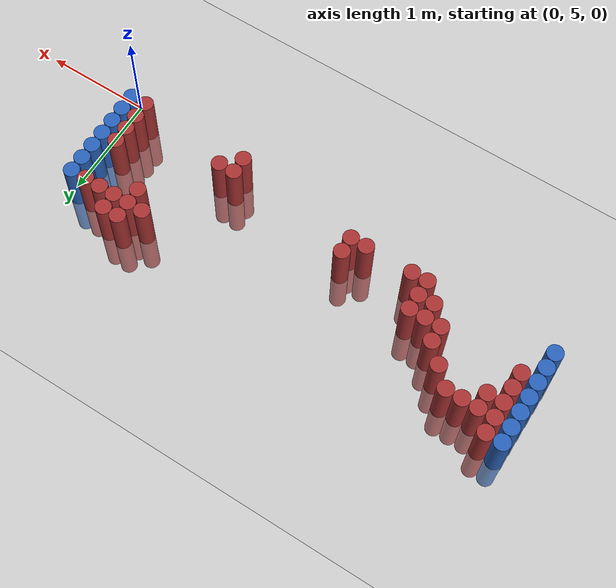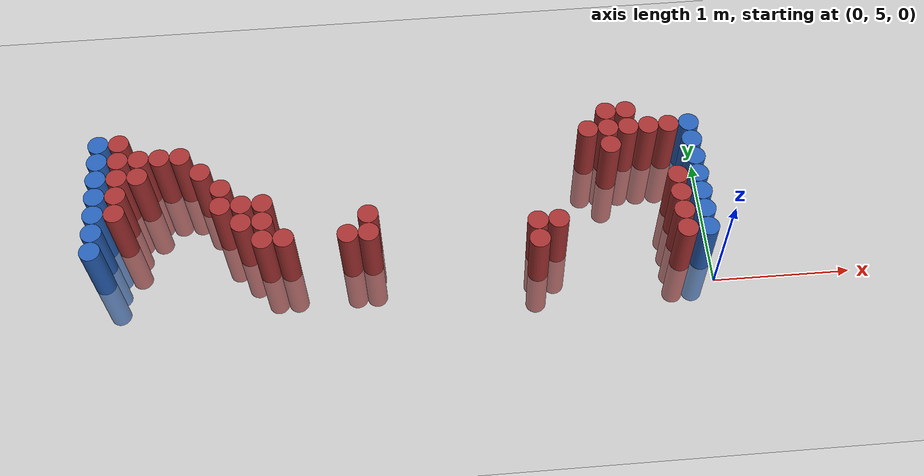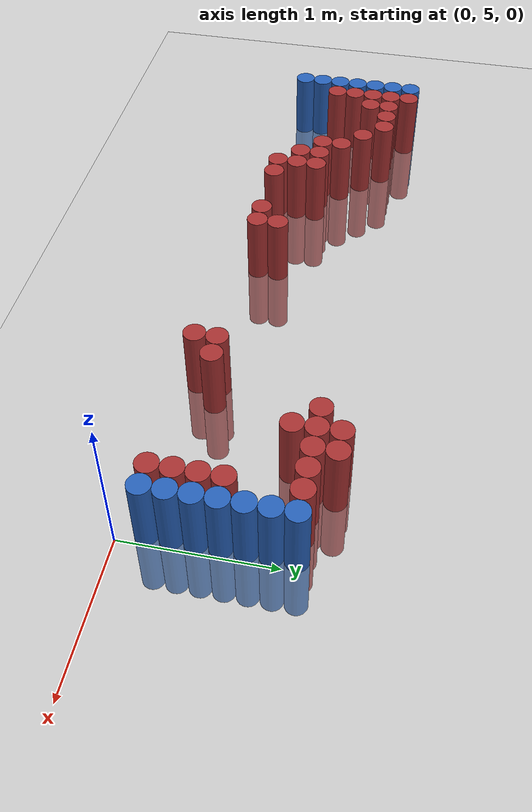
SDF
<sdf version="1.6">
 <world name="default">
  <model name="ground_plane">
   <static>1</static>
   <link name="link">
    <collision name="collision">
     <geometry><plane><normal>0 0 1</normal><size>100 100</size></plane></geometry>
     <surface><friction><ode><mu>100</mu><mu2>50</mu2></ode></friction></surface>
    </collision>
    <visual name="visual">
     <cast_shadows>0</cast_shadows>
     <geometry><plane><normal>0 0 1</normal><size>100 100</size></plane></geometry>
     <material>
      <script><uri>file://media/materials/scripts/gazebo.material</uri><name>Gazebo/Grey</name></script>
     </material>
    </visual>
   </link>
  </model>
  <model name="unit_cylinder_97">
   <static>1</static>
   <pose>-4.425000 5.325000 0.000000 0.000000 0.000000 0.000000</pose>
   <link name="link">
    <inertial>
     <mass>1</mass>
     <inertia><ixx>0.145833</ixx><ixy>0</ixy><ixz>0</ixz><iyy>0.145833</iyy><iyz>0</iyz><izz>0.125</izz></inertia>
    </inertial>
    <collision name="collision">
     <geometry><cylinder><radius>0.075000</radius><length>1</length></cylinder></geometry>
    </collision>
    <visual name="visual">
     <geometry><cylinder><radius>0.075000</radius><length>1</length></cylinder></geometry>
     <material>
      <ambient>0.152000 0.379000 0.720000 1</ambient>
      <diffuse>0.152000 0.379000 0.720000 1</diffuse>
     </material>
     <material>
      <script><name>Gazebo/Grey</name><uri>file://media/materials/scripts/gazebo.material</uri></script>
     </material>
    </visual>
   </link>
  </model>
  <model name="unit_cylinder_98">
   <static>1</static>
   <pose>-4.425000 5.475000 0.000000 0.000000 0.000000 0.000000</pose>
   <link name="link">
    <inertial>
     <mass>1</mass>
     <inertia><ixx>0.145833</ixx><ixy>0</ixy><ixz>0</ixz><iyy>0.145833</iyy><iyz>0</iyz><izz>0.125</izz></inertia>
    </inertial>
    <collision name="collision">
     <geometry><cylinder><radius>0.075000</radius><length>1</length></cylinder></geometry>
    </collision>
    <visual name="visual">
     <geometry><cylinder><radius>0.075000</radius><length>1</length></cylinder></geometry>
     <material>
      <ambient>0.152000 0.379000 0.720000 1</ambient>
      <diffuse>0.152000 0.379000 0.720000 1</diffuse>
     </material>
     <material>
      <script><name>Gazebo/Grey</name><uri>file://media/materials/scripts/gazebo.material</uri></script>
     </material>
    </visual>
   </link>
  </model>
  <model name="unit_cylinder_99">
   <static>1</static>
   <pose>-4.425000 5.625000 0.000000 0.000000 0.000000 0.000000</pose>
   <link name="link">
    <inertial>
     <mass>1</mass>
     <inertia><ixx>0.145833</ixx><ixy>0</ixy><ixz>0</ixz><iyy>0.145833</iyy><iyz>0</iyz><izz>0.125</izz></inertia>
    </inertial>
    <collision name="collision">
     <geometry><cylinder><radius>0.075000</radius><length>1</length></cylinder></geometry>
    </collision>
    <visual name="visual">
     <geometry><cylinder><radius>0.075000</radius><length>1</length></cylinder></geometry>
     <material>
      <ambient>0.152000 0.379000 0.720000 1</ambient>
      <diffuse>0.152000 0.379000 0.720000 1</diffuse>
     </material>
     <material>
      <script><name>Gazebo/Grey</name><uri>file://media/materials/scripts/gazebo.material</uri></script>
     </material>
    </visual>
   </link>
  </model>
  <model name="unit_cylinder_100">
   <static>1</static>
   <pose>-4.425000 5.775000 0.000000 0.000000 0.000000 0.000000</pose>
   <link name="link">
    <inertial>
     <mass>1</mass>
     <inertia><ixx>0.145833</ixx><ixy>0</ixy><ixz>0</ixz><iyy>0.145833</iyy><iyz>0</iyz><izz>0.125</izz></inertia>
    </inertial>
    <collision name="collision">
     <geometry><cylinder><radius>0.075000</radius><length>1</length></cylinder></geometry>
    </collision>
    <visual name="visual">
     <geometry><cylinder><radius>0.075000</radius><length>1</length></cylinder></geometry>
     <material>
      <ambient>0.152000 0.379000 0.720000 1</ambient>
      <diffuse>0.152000 0.379000 0.720000 1</diffuse>
     </material>
     <material>
      <script><name>Gazebo/Grey</name><uri>file://media/materials/scripts/gazebo.material</uri></script>
     </material>
    </visual>
   </link>
  </model>
  <model name="unit_cylinder_101">
   <static>1</static>
   <pose>-4.425000 5.925000 0.000000 0.000000 0.000000 0.000000</pose>
   <link name="link">
    <inertial>
     <mass>1</mass>
     <inertia><ixx>0.145833</ixx><ixy>0</ixy><ixz>0</ixz><iyy>0.145833</iyy><iyz>0</iyz><izz>0.125</izz></inertia>
    </inertial>
    <collision name="collision">
     <geometry><cylinder><radius>0.075000</radius><length>1</length></cylinder></geometry>
    </collision>
    <visual name="visual">
     <geometry><cylinder><radius>0.075000</radius><length>1</length></cylinder></geometry>
     <material>
      <ambient>0.152000 0.379000 0.720000 1</ambient>
      <diffuse>0.152000 0.379000 0.720000 1</diffuse>
     </material>
     <material>
      <script><name>Gazebo/Grey</name><uri>file://media/materials/scripts/gazebo.material</uri></script>
     </material>
    </visual>
   </link>
  </model>
  <model name="unit_cylinder_102">
   <static>1</static>
   <pose>-4.425000 6.075000 0.000000 0.000000 0.000000 0.000000</pose>
   <link name="link">
    <inertial>
     <mass>1</mass>
     <inertia><ixx>0.145833</ixx><ixy>0</ixy><ixz>0</ixz><iyy>0.145833</iyy><iyz>0</iyz><izz>0.125</izz></inertia>
    </inertial>
    <collision name="collision">
     <geometry><cylinder><radius>0.075000</radius><length>1</length></cylinder></geometry>
    </collision>
    <visual name="visual">
     <geometry><cylinder><radius>0.075000</radius><length>1</length></cylinder></geometry>
     <material>
      <ambient>0.152000 0.379000 0.720000 1</ambient>
      <diffuse>0.152000 0.379000 0.720000 1</diffuse>
     </material>
     <material>
      <script><name>Gazebo/Grey</name><uri>file://media/materials/scripts/gazebo.material</uri></script>
     </material>
    </visual>
   </link>
  </model>
  <model name="unit_cylinder_103">
   <static>1</static>
   <pose>-4.425000 6.225000 0.000000 0.000000 0.000000 0.000000</pose>
   <link name="link">
    <inertial>
     <mass>1</mass>
     <inertia><ixx>0.145833</ixx><ixy>0</ixy><ixz>0</ixz><iyy>0.145833</iyy><iyz>0</iyz><izz>0.125</izz></inertia>
    </inertial>
    <collision name="collision">
     <geometry><cylinder><radius>0.075000</radius><length>1</length></cylinder></geometry>
    </collision>
    <visual name="visual">
     <geometry><cylinder><radius>0.075000</radius><length>1</length></cylinder></geometry>
     <material>
      <ambient>0.152000 0.379000 0.720000 1</ambient>
      <diffuse>0.152000 0.379000 0.720000 1</diffuse>
     </material>
     <material>
      <script><name>Gazebo/Grey</name><uri>file://media/materials/scripts/gazebo.material</uri></script>
     </material>
    </visual>
   </link>
  </model>
  <model name="unit_cylinder_126">
   <static>1</static>
   <pose>-4.275000 5.625000 0.000000 0.000000 0.000000 0.000000</pose>
   <link name="link">
    <inertial>
     <mass>1</mass>
     <inertia><ixx>0.145833</ixx><ixy>0</ixy><ixz>0</ixz><iyy>0.145833</iyy><iyz>0</iyz><izz>0.125</izz></inertia>
    </inertial>
    <collision name="collision">
     <geometry><cylinder><radius>0.075000</radius><length>1</length></cylinder></geometry>
    </collision>
    <visual name="visual">
     <geometry><cylinder><radius>0.075000</radius><length>1</length></cylinder></geometry>
     <material>
      <ambient>0.648000 0.192000 0.192000 1</ambient>
      <diffuse>0.648000 0.192000 0.192000 1</diffuse>
     </material>
     <material>
      <script><name>Gazebo/Grey</name><uri>file://media/materials/scripts/gazebo.material</uri></script>
     </material>
    </visual>
   </link>
  </model>
  <model name="unit_cylinder_127">
   <static>1</static>
   <pose>-4.275000 5.775000 0.000000 0.000000 0.000000 0.000000</pose>
   <link name="link">
    <inertial>
     <mass>1</mass>
     <inertia><ixx>0.145833</ixx><ixy>0</ixy><ixz>0</ixz><iyy>0.145833</iyy><iyz>0</iyz><izz>0.125</izz></inertia>
    </inertial>
    <collision name="collision">
     <geometry><cylinder><radius>0.075000</radius><length>1</length></cylinder></geometry>
    </collision>
    <visual name="visual">
     <geometry><cylinder><radius>0.075000</radius><length>1</length></cylinder></geometry>
     <material>
      <ambient>0.648000 0.192000 0.192000 1</ambient>
      <diffuse>0.648000 0.192000 0.192000 1</diffuse>
     </material>
     <material>
      <script><name>Gazebo/Grey</name><uri>file://media/materials/scripts/gazebo.material</uri></script>
     </material>
    </visual>
   </link>
  </model>
  <model name="unit_cylinder_128">
   <static>1</static>
   <pose>-4.275000 5.925000 0.000000 0.000000 0.000000 0.000000</pose>
   <link name="link">
    <inertial>
     <mass>1</mass>
     <inertia><ixx>0.145833</ixx><ixy>0</ixy><ixz>0</ixz><iyy>0.145833</iyy><iyz>0</iyz><izz>0.125</izz></inertia>
    </inertial>
    <collision name="collision">
     <geometry><cylinder><radius>0.075000</radius><length>1</length></cylinder></geometry>
    </collision>
    <visual name="visual">
     <geometry><cylinder><radius>0.075000</radius><length>1</length></cylinder></geometry>
     <material>
      <ambient>0.648000 0.192000 0.192000 1</ambient>
      <diffuse>0.648000 0.192000 0.192000 1</diffuse>
     </material>
     <material>
      <script><name>Gazebo/Grey</name><uri>file://media/materials/scripts/gazebo.material</uri></script>
     </material>
    </visual>
   </link>
  </model>
  <model name="unit_cylinder_129">
   <static>1</static>
   <pose>-4.275000 6.075000 0.000000 0.000000 0.000000 0.000000</pose>
   <link name="link">
    <inertial>
     <mass>1</mass>
     <inertia><ixx>0.145833</ixx><ixy>0</ixy><ixz>0</ixz><iyy>0.145833</iyy><iyz>0</iyz><izz>0.125</izz></inertia>
    </inertial>
    <collision name="collision">
     <geometry><cylinder><radius>0.075000</radius><length>1</length></cylinder></geometry>
    </collision>
    <visual name="visual">
     <geometry><cylinder><radius>0.075000</radius><length>1</length></cylinder></geometry>
     <material>
      <ambient>0.648000 0.192000 0.192000 1</ambient>
      <diffuse>0.648000 0.192000 0.192000 1</diffuse>
     </material>
     <material>
      <script><name>Gazebo/Grey</name><uri>file://media/materials/scripts/gazebo.material</uri></script>
     </material>
    </visual>
   </link>
  </model>
  <model name="unit_cylinder_130">
   <static>1</static>
   <pose>-4.275000 6.225000 0.000000 0.000000 0.000000 0.000000</pose>
   <link name="link">
    <inertial>
     <mass>1</mass>
     <inertia><ixx>0.145833</ixx><ixy>0</ixy><ixz>0</ixz><iyy>0.145833</iyy><iyz>0</iyz><izz>0.125</izz></inertia>
    </inertial>
    <collision name="collision">
     <geometry><cylinder><radius>0.075000</radius><length>1</length></cylinder></geometry>
    </collision>
    <visual name="visual">
     <geometry><cylinder><radius>0.075000</radius><length>1</length></cylinder></geometry>
     <material>
      <ambient>0.648000 0.192000 0.192000 1</ambient>
      <diffuse>0.648000 0.192000 0.192000 1</diffuse>
     </material>
     <material>
      <script><name>Gazebo/Grey</name><uri>file://media/materials/scripts/gazebo.material</uri></script>
     </material>
    </visual>
   </link>
  </model>
  <model name="unit_cylinder_140">
   <static>1</static>
   <pose>-4.125000 5.925000 0.000000 0.000000 0.000000 0.000000</pose>
   <link name="link">
    <inertial>
     <mass>1</mass>
     <inertia><ixx>0.145833</ixx><ixy>0</ixy><ixz>0</ixz><iyy>0.145833</iyy><iyz>0</iyz><izz>0.125</izz></inertia>
    </inertial>
    <collision name="collision">
     <geometry><cylinder><radius>0.075000</radius><length>1</length></cylinder></geometry>
    </collision>
    <visual name="visual">
     <geometry><cylinder><radius>0.075000</radius><length>1</length></cylinder></geometry>
     <material>
      <ambient>0.648000 0.192000 0.192000 1</ambient>
      <diffuse>0.648000 0.192000 0.192000 1</diffuse>
     </material>
     <material>
      <script><name>Gazebo/Grey</name><uri>file://media/materials/scripts/gazebo.material</uri></script>
     </material>
    </visual>
   </link>
  </model>
  <model name="unit_cylinder_141">
   <static>1</static>
   <pose>-4.125000 6.075000 0.000000 0.000000 0.000000 0.000000</pose>
   <link name="link">
    <inertial>
     <mass>1</mass>
     <inertia><ixx>0.145833</ixx><ixy>0</ixy><ixz>0</ixz><iyy>0.145833</iyy><iyz>0</iyz><izz>0.125</izz></inertia>
    </inertial>
    <collision name="collision">
     <geometry><cylinder><radius>0.075000</radius><length>1</length></cylinder></geometry>
    </collision>
    <visual name="visual">
     <geometry><cylinder><radius>0.075000</radius><length>1</length></cylinder></geometry>
     <material>
      <ambient>0.648000 0.192000 0.192000 1</ambient>
      <diffuse>0.648000 0.192000 0.192000 1</diffuse>
     </material>
     <material>
      <script><name>Gazebo/Grey</name><uri>file://media/materials/scripts/gazebo.material</uri></script>
     </material>
    </visual>
   </link>
  </model>
  <model name="unit_cylinder_147">
   <static>1</static>
   <pose>-3.975000 6.075000 0.000000 0.000000 0.000000 0.000000</pose>
   <link name="link">
    <inertial>
     <mass>1</mass>
     <inertia><ixx>0.145833</ixx><ixy>0</ixy><ixz>0</ixz><iyy>0.145833</iyy><iyz>0</iyz><izz>0.125</izz></inertia>
    </inertial>
    <collision name="collision">
     <geometry><cylinder><radius>0.075000</radius><length>1</length></cylinder></geometry>
    </collision>
    <visual name="visual">
     <geometry><cylinder><radius>0.075000</radius><length>1</length></cylinder></geometry>
     <material>
      <ambient>0.648000 0.192000 0.192000 1</ambient>
      <diffuse>0.648000 0.192000 0.192000 1</diffuse>
     </material>
     <material>
      <script><name>Gazebo/Grey</name><uri>file://media/materials/scripts/gazebo.material</uri></script>
     </material>
    </visual>
   </link>
  </model>
  <model name="unit_cylinder_151">
   <static>1</static>
   <pose>-3.825000 6.075000 0.000000 0.000000 0.000000 0.000000</pose>
   <link name="link">
    <inertial>
     <mass>1</mass>
     <inertia><ixx>0.145833</ixx><ixy>0</ixy><ixz>0</ixz><iyy>0.145833</iyy><iyz>0</iyz><izz>0.125</izz></inertia>
    </inertial>
    <collision name="collision">
     <geometry><cylinder><radius>0.075000</radius><length>1</length></cylinder></geometry>
    </collision>
    <visual name="visual">
     <geometry><cylinder><radius>0.075000</radius><length>1</length></cylinder></geometry>
     <material>
      <ambient>0.648000 0.192000 0.192000 1</ambient>
      <diffuse>0.648000 0.192000 0.192000 1</diffuse>
     </material>
     <material>
      <script><name>Gazebo/Grey</name><uri>file://media/materials/scripts/gazebo.material</uri></script>
     </material>
    </visual>
   </link>
  </model>
  <model name="unit_cylinder_154">
   <static>1</static>
   <pose>-3.675000 5.925000 0.000000 0.000000 0.000000 0.000000</pose>
   <link name="link">
    <inertial>
     <mass>1</mass>
     <inertia><ixx>0.145833</ixx><ixy>0</ixy><ixz>0</ixz><iyy>0.145833</iyy><iyz>0</iyz><izz>0.125</izz></inertia>
    </inertial>
    <collision name="collision">
     <geometry><cylinder><radius>0.075000</radius><length>1</length></cylinder></geometry>
    </collision>
    <visual name="visual">
     <geometry><cylinder><radius>0.075000</radius><length>1</length></cylinder></geometry>
     <material>
      <ambient>0.648000 0.192000 0.192000 1</ambient>
      <diffuse>0.648000 0.192000 0.192000 1</diffuse>
     </material>
     <material>
      <script><name>Gazebo/Grey</name><uri>file://media/materials/scripts/gazebo.material</uri></script>
     </material>
    </visual>
   </link>
  </model>
  <model name="unit_cylinder_156">
   <static>1</static>
   <pose>-3.525000 5.625000 0.000000 0.000000 0.000000 0.000000</pose>
   <link name="link">
    <inertial>
     <mass>1</mass>
     <inertia><ixx>0.145833</ixx><ixy>0</ixy><ixz>0</ixz><iyy>0.145833</iyy><iyz>0</iyz><izz>0.125</izz></inertia>
    </inertial>
    <collision name="collision">
     <geometry><cylinder><radius>0.075000</radius><length>1</length></cylinder></geometry>
    </collision>
    <visual name="visual">
     <geometry><cylinder><radius>0.075000</radius><length>1</length></cylinder></geometry>
     <material>
      <ambient>0.648000 0.192000 0.192000 1</ambient>
      <diffuse>0.648000 0.192000 0.192000 1</diffuse>
     </material>
     <material>
      <script><name>Gazebo/Grey</name><uri>file://media/materials/scripts/gazebo.material</uri></script>
     </material>
    </visual>
   </link>
  </model>
  <model name="unit_cylinder_157">
   <static>1</static>
   <pose>-3.525000 5.775000 0.000000 0.000000 0.000000 0.000000</pose>
   <link name="link">
    <inertial>
     <mass>1</mass>
     <inertia><ixx>0.145833</ixx><ixy>0</ixy><ixz>0</ixz><iyy>0.145833</iyy><iyz>0</iyz><izz>0.125</izz></inertia>
    </inertial>
    <collision name="collision">
     <geometry><cylinder><radius>0.075000</radius><length>1</length></cylinder></geometry>
    </collision>
    <visual name="visual">
     <geometry><cylinder><radius>0.075000</radius><length>1</length></cylinder></geometry>
     <material>
      <ambient>0.648000 0.192000 0.192000 1</ambient>
      <diffuse>0.648000 0.192000 0.192000 1</diffuse>
     </material>
     <material>
      <script><name>Gazebo/Grey</name><uri>file://media/materials/scripts/gazebo.material</uri></script>
     </material>
    </visual>
   </link>
  </model>
  <model name="unit_cylinder_159">
   <static>1</static>
   <pose>-3.375000 5.475000 0.000000 0.000000 0.000000 0.000000</pose>
   <link name="link">
    <inertial>
     <mass>1</mass>
     <inertia><ixx>0.145833</ixx><ixy>0</ixy><ixz>0</ixz><iyy>0.145833</iyy><iyz>0</iyz><izz>0.125</izz></inertia>
    </inertial>
    <collision name="collision">
     <geometry><cylinder><radius>0.075000</radius><length>1</length></cylinder></geometry>
    </collision>
    <visual name="visual">
     <geometry><cylinder><radius>0.075000</radius><length>1</length></cylinder></geometry>
     <material>
      <ambient>0.648000 0.192000 0.192000 1</ambient>
      <diffuse>0.648000 0.192000 0.192000 1</diffuse>
     </material>
     <material>
      <script><name>Gazebo/Grey</name><uri>file://media/materials/scripts/gazebo.material</uri></script>
     </material>
    </visual>
   </link>
  </model>
  <model name="unit_cylinder_160">
   <static>1</static>
   <pose>-3.375000 5.625000 0.000000 0.000000 0.000000 0.000000</pose>
   <link name="link">
    <inertial>
     <mass>1</mass>
     <inertia><ixx>0.145833</ixx><ixy>0</ixy><ixz>0</ixz><iyy>0.145833</iyy><iyz>0</iyz><izz>0.125</izz></inertia>
    </inertial>
    <collision name="collision">
     <geometry><cylinder><radius>0.075000</radius><length>1</length></cylinder></geometry>
    </collision>
    <visual name="visual">
     <geometry><cylinder><radius>0.075000</radius><length>1</length></cylinder></geometry>
     <material>
      <ambient>0.648000 0.192000 0.192000 1</ambient>
      <diffuse>0.648000 0.192000 0.192000 1</diffuse>
     </material>
     <material>
      <script><name>Gazebo/Grey</name><uri>file://media/materials/scripts/gazebo.material</uri></script>
     </material>
    </visual>
   </link>
  </model>
  <model name="unit_cylinder_161">
   <static>1</static>
   <pose>-3.225000 5.325000 0.000000 0.000000 0.000000 0.000000</pose>
   <link name="link">
    <inertial>
     <mass>1</mass>
     <inertia><ixx>0.145833</ixx><ixy>0</ixy><ixz>0</ixz><iyy>0.145833</iyy><iyz>0</iyz><izz>0.125</izz></inertia>
    </inertial>
    <collision name="collision">
     <geometry><cylinder><radius>0.075000</radius><length>1</length></cylinder></geometry>
    </collision>
    <visual name="visual">
     <geometry><cylinder><radius>0.075000</radius><length>1</length></cylinder></geometry>
     <material>
      <ambient>0.648000 0.192000 0.192000 1</ambient>
      <diffuse>0.648000 0.192000 0.192000 1</diffuse>
     </material>
     <material>
      <script><name>Gazebo/Grey</name><uri>file://media/materials/scripts/gazebo.material</uri></script>
     </material>
    </visual>
   </link>
  </model>
  <model name="unit_cylinder_162">
   <static>1</static>
   <pose>-3.225000 5.475000 0.000000 0.000000 0.000000 0.000000</pose>
   <link name="link">
    <inertial>
     <mass>1</mass>
     <inertia><ixx>0.145833</ixx><ixy>0</ixy><ixz>0</ixz><iyy>0.145833</iyy><iyz>0</iyz><izz>0.125</izz></inertia>
    </inertial>
    <collision name="collision">
     <geometry><cylinder><radius>0.075000</radius><length>1</length></cylinder></geometry>
    </collision>
    <visual name="visual">
     <geometry><cylinder><radius>0.075000</radius><length>1</length></cylinder></geometry>
     <material>
      <ambient>0.648000 0.192000 0.192000 1</ambient>
      <diffuse>0.648000 0.192000 0.192000 1</diffuse>
     </material>
     <material>
      <script><name>Gazebo/Grey</name><uri>file://media/materials/scripts/gazebo.material</uri></script>
     </material>
    </visual>
   </link>
  </model>
  <model name="unit_cylinder_163">
   <static>1</static>
   <pose>-3.225000 5.625000 0.000000 0.000000 0.000000 0.000000</pose>
   <link name="link">
    <inertial>
     <mass>1</mass>
     <inertia><ixx>0.145833</ixx><ixy>0</ixy><ixz>0</ixz><iyy>0.145833</iyy><iyz>0</iyz><izz>0.125</izz></inertia>
    </inertial>
    <collision name="collision">
     <geometry><cylinder><radius>0.075000</radius><length>1</length></cylinder></geometry>
    </collision>
    <visual name="visual">
     <geometry><cylinder><radius>0.075000</radius><length>1</length></cylinder></geometry>
     <material>
      <ambient>0.648000 0.192000 0.192000 1</ambient>
      <diffuse>0.648000 0.192000 0.192000 1</diffuse>
     </material>
     <material>
      <script><name>Gazebo/Grey</name><uri>file://media/materials/scripts/gazebo.material</uri></script>
     </material>
    </visual>
   </link>
  </model>
  <model name="unit_cylinder_164">
   <static>1</static>
   <pose>-3.075000 5.325000 0.000000 0.000000 0.000000 0.000000</pose>
   <link name="link">
    <inertial>
     <mass>1</mass>
     <inertia><ixx>0.145833</ixx><ixy>0</ixy><ixz>0</ixz><iyy>0.145833</iyy><iyz>0</iyz><izz>0.125</izz></inertia>
    </inertial>
    <collision name="collision">
     <geometry><cylinder><radius>0.075000</radius><length>1</length></cylinder></geometry>
    </collision>
    <visual name="visual">
     <geometry><cylinder><radius>0.075000</radius><length>1</length></cylinder></geometry>
     <material>
      <ambient>0.648000 0.192000 0.192000 1</ambient>
      <diffuse>0.648000 0.192000 0.192000 1</diffuse>
     </material>
     <material>
      <script><name>Gazebo/Grey</name><uri>file://media/materials/scripts/gazebo.material</uri></script>
     </material>
    </visual>
   </link>
  </model>
  <model name="unit_cylinder_172">
   <static>1</static>
   <pose>-2.625000 5.325000 0.000000 0.000000 0.000000 0.000000</pose>
   <link name="link">
    <inertial>
     <mass>1</mass>
     <inertia><ixx>0.145833</ixx><ixy>0</ixy><ixz>0</ixz><iyy>0.145833</iyy><iyz>0</iyz><izz>0.125</izz></inertia>
    </inertial>
    <collision name="collision">
     <geometry><cylinder><radius>0.075000</radius><length>1</length></cylinder></geometry>
    </collision>
    <visual name="visual">
     <geometry><cylinder><radius>0.075000</radius><length>1</length></cylinder></geometry>
     <material>
      <ambient>0.648000 0.192000 0.192000 1</ambient>
      <diffuse>0.648000 0.192000 0.192000 1</diffuse>
     </material>
     <material>
      <script><name>Gazebo/Grey</name><uri>file://media/materials/scripts/gazebo.material</uri></script>
     </material>
    </visual>
   </link>
  </model>
  <model name="unit_cylinder_178">
   <static>1</static>
   <pose>-2.475000 5.325000 0.000000 0.000000 0.000000 0.000000</pose>
   <link name="link">
    <inertial>
     <mass>1</mass>
     <inertia><ixx>0.145833</ixx><ixy>0</ixy><ixz>0</ixz><iyy>0.145833</iyy><iyz>0</iyz><izz>0.125</izz></inertia>
    </inertial>
    <collision name="collision">
     <geometry><cylinder><radius>0.075000</radius><length>1</length></cylinder></geometry>
    </collision>
    <visual name="visual">
     <geometry><cylinder><radius>0.075000</radius><length>1</length></cylinder></geometry>
     <material>
      <ambient>0.648000 0.192000 0.192000 1</ambient>
      <diffuse>0.648000 0.192000 0.192000 1</diffuse>
     </material>
     <material>
      <script><name>Gazebo/Grey</name><uri>file://media/materials/scripts/gazebo.material</uri></script>
     </material>
    </visual>
   </link>
  </model>
  <model name="unit_cylinder_179">
   <static>1</static>
   <pose>-2.475000 5.475000 0.000000 0.000000 0.000000 0.000000</pose>
   <link name="link">
    <inertial>
     <mass>1</mass>
     <inertia><ixx>0.145833</ixx><ixy>0</ixy><ixz>0</ixz><iyy>0.145833</iyy><iyz>0</iyz><izz>0.125</izz></inertia>
    </inertial>
    <collision name="collision">
     <geometry><cylinder><radius>0.075000</radius><length>1</length></cylinder></geometry>
    </collision>
    <visual name="visual">
     <geometry><cylinder><radius>0.075000</radius><length>1</length></cylinder></geometry>
     <material>
      <ambient>0.648000 0.192000 0.192000 1</ambient>
      <diffuse>0.648000 0.192000 0.192000 1</diffuse>
     </material>
     <material>
      <script><name>Gazebo/Grey</name><uri>file://media/materials/scripts/gazebo.material</uri></script>
     </material>
    </visual>
   </link>
  </model>
  <model name="unit_cylinder_210">
   <static>1</static>
   <pose>-1.275000 5.175000 0.000000 0.000000 0.000000 0.000000</pose>
   <link name="link">
    <inertial>
     <mass>1</mass>
     <inertia><ixx>0.145833</ixx><ixy>0</ixy><ixz>0</ixz><iyy>0.145833</iyy><iyz>0</iyz><izz>0.125</izz></inertia>
    </inertial>
    <collision name="collision">
     <geometry><cylinder><radius>0.075000</radius><length>1</length></cylinder></geometry>
    </collision>
    <visual name="visual">
     <geometry><cylinder><radius>0.075000</radius><length>1</length></cylinder></geometry>
     <material>
      <ambient>0.648000 0.192000 0.192000 1</ambient>
      <diffuse>0.648000 0.192000 0.192000 1</diffuse>
     </material>
     <material>
      <script><name>Gazebo/Grey</name><uri>file://media/materials/scripts/gazebo.material</uri></script>
     </material>
    </visual>
   </link>
  </model>
  <model name="unit_cylinder_211">
   <static>1</static>
   <pose>-1.275000 5.325000 0.000000 0.000000 0.000000 0.000000</pose>
   <link name="link">
    <inertial>
     <mass>1</mass>
     <inertia><ixx>0.145833</ixx><ixy>0</ixy><ixz>0</ixz><iyy>0.145833</iyy><iyz>0</iyz><izz>0.125</izz></inertia>
    </inertial>
    <collision name="collision">
     <geometry><cylinder><radius>0.075000</radius><length>1</length></cylinder></geometry>
    </collision>
    <visual name="visual">
     <geometry><cylinder><radius>0.075000</radius><length>1</length></cylinder></geometry>
     <material>
      <ambient>0.648000 0.192000 0.192000 1</ambient>
      <diffuse>0.648000 0.192000 0.192000 1</diffuse>
     </material>
     <material>
      <script><name>Gazebo/Grey</name><uri>file://media/materials/scripts/gazebo.material</uri></script>
     </material>
    </visual>
   </link>
  </model>
  <model name="unit_cylinder_216">
   <static>1</static>
   <pose>-1.125000 5.325000 0.000000 0.000000 0.000000 0.000000</pose>
   <link name="link">
    <inertial>
     <mass>1</mass>
     <inertia><ixx>0.145833</ixx><ixy>0</ixy><ixz>0</ixz><iyy>0.145833</iyy><iyz>0</iyz><izz>0.125</izz></inertia>
    </inertial>
    <collision name="collision">
     <geometry><cylinder><radius>0.075000</radius><length>1</length></cylinder></geometry>
    </collision>
    <visual name="visual">
     <geometry><cylinder><radius>0.075000</radius><length>1</length></cylinder></geometry>
     <material>
      <ambient>0.648000 0.192000 0.192000 1</ambient>
      <diffuse>0.648000 0.192000 0.192000 1</diffuse>
     </material>
     <material>
      <script><name>Gazebo/Grey</name><uri>file://media/materials/scripts/gazebo.material</uri></script>
     </material>
    </visual>
   </link>
  </model>
  <model name="unit_cylinder_226">
   <static>1</static>
   <pose>-0.825000 6.075000 0.000000 0.000000 0.000000 0.000000</pose>
   <link name="link">
    <inertial>
     <mass>1</mass>
     <inertia><ixx>0.145833</ixx><ixy>0</ixy><ixz>0</ixz><iyy>0.145833</iyy><iyz>0</iyz><izz>0.125</izz></inertia>
    </inertial>
    <collision name="collision">
     <geometry><cylinder><radius>0.075000</radius><length>1</length></cylinder></geometry>
    </collision>
    <visual name="visual">
     <geometry><cylinder><radius>0.075000</radius><length>1</length></cylinder></geometry>
     <material>
      <ambient>0.648000 0.192000 0.192000 1</ambient>
      <diffuse>0.648000 0.192000 0.192000 1</diffuse>
     </material>
     <material>
      <script><name>Gazebo/Grey</name><uri>file://media/materials/scripts/gazebo.material</uri></script>
     </material>
    </visual>
   </link>
  </model>
  <model name="unit_cylinder_229">
   <static>1</static>
   <pose>-0.675000 5.925000 0.000000 0.000000 0.000000 0.000000</pose>
   <link name="link">
    <inertial>
     <mass>1</mass>
     <inertia><ixx>0.145833</ixx><ixy>0</ixy><ixz>0</ixz><iyy>0.145833</iyy><iyz>0</iyz><izz>0.125</izz></inertia>
    </inertial>
    <collision name="collision">
     <geometry><cylinder><radius>0.075000</radius><length>1</length></cylinder></geometry>
    </collision>
    <visual name="visual">
     <geometry><cylinder><radius>0.075000</radius><length>1</length></cylinder></geometry>
     <material>
      <ambient>0.648000 0.192000 0.192000 1</ambient>
      <diffuse>0.648000 0.192000 0.192000 1</diffuse>
     </material>
     <material>
      <script><name>Gazebo/Grey</name><uri>file://media/materials/scripts/gazebo.material</uri></script>
     </material>
    </visual>
   </link>
  </model>
  <model name="unit_cylinder_230">
   <static>1</static>
   <pose>-0.675000 6.075000 0.000000 0.000000 0.000000 0.000000</pose>
   <link name="link">
    <inertial>
     <mass>1</mass>
     <inertia><ixx>0.145833</ixx><ixy>0</ixy><ixz>0</ixz><iyy>0.145833</iyy><iyz>0</iyz><izz>0.125</izz></inertia>
    </inertial>
    <collision name="collision">
     <geometry><cylinder><radius>0.075000</radius><length>1</length></cylinder></geometry>
    </collision>
    <visual name="visual">
     <geometry><cylinder><radius>0.075000</radius><length>1</length></cylinder></geometry>
     <material>
      <ambient>0.648000 0.192000 0.192000 1</ambient>
      <diffuse>0.648000 0.192000 0.192000 1</diffuse>
     </material>
     <material>
      <script><name>Gazebo/Grey</name><uri>file://media/materials/scripts/gazebo.material</uri></script>
     </material>
    </visual>
   </link>
  </model>
  <model name="unit_cylinder_231">
   <static>1</static>
   <pose>-0.675000 6.225000 0.000000 0.000000 0.000000 0.000000</pose>
   <link name="link">
    <inertial>
     <mass>1</mass>
     <inertia><ixx>0.145833</ixx><ixy>0</ixy><ixz>0</ixz><iyy>0.145833</iyy><iyz>0</iyz><izz>0.125</izz></inertia>
    </inertial>
    <collision name="collision">
     <geometry><cylinder><radius>0.075000</radius><length>1</length></cylinder></geometry>
    </collision>
    <visual name="visual">
     <geometry><cylinder><radius>0.075000</radius><length>1</length></cylinder></geometry>
     <material>
      <ambient>0.648000 0.192000 0.192000 1</ambient>
      <diffuse>0.648000 0.192000 0.192000 1</diffuse>
     </material>
     <material>
      <script><name>Gazebo/Grey</name><uri>file://media/materials/scripts/gazebo.material</uri></script>
     </material>
    </visual>
   </link>
  </model>
  <model name="unit_cylinder_236">
   <static>1</static>
   <pose>-0.525000 6.075000 0.000000 0.000000 0.000000 0.000000</pose>
   <link name="link">
    <inertial>
     <mass>1</mass>
     <inertia><ixx>0.145833</ixx><ixy>0</ixy><ixz>0</ixz><iyy>0.145833</iyy><iyz>0</iyz><izz>0.125</izz></inertia>
    </inertial>
    <collision name="collision">
     <geometry><cylinder><radius>0.075000</radius><length>1</length></cylinder></geometry>
    </collision>
    <visual name="visual">
     <geometry><cylinder><radius>0.075000</radius><length>1</length></cylinder></geometry>
     <material>
      <ambient>0.648000 0.192000 0.192000 1</ambient>
      <diffuse>0.648000 0.192000 0.192000 1</diffuse>
     </material>
     <material>
      <script><name>Gazebo/Grey</name><uri>file://media/materials/scripts/gazebo.material</uri></script>
     </material>
    </visual>
   </link>
  </model>
  <model name="unit_cylinder_237">
   <static>1</static>
   <pose>-0.525000 6.225000 0.000000 0.000000 0.000000 0.000000</pose>
   <link name="link">
    <inertial>
     <mass>1</mass>
     <inertia><ixx>0.145833</ixx><ixy>0</ixy><ixz>0</ixz><iyy>0.145833</iyy><iyz>0</iyz><izz>0.125</izz></inertia>
    </inertial>
    <collision name="collision">
     <geometry><cylinder><radius>0.075000</radius><length>1</length></cylinder></geometry>
    </collision>
    <visual name="visual">
     <geometry><cylinder><radius>0.075000</radius><length>1</length></cylinder></geometry>
     <material>
      <ambient>0.648000 0.192000 0.192000 1</ambient>
      <diffuse>0.648000 0.192000 0.192000 1</diffuse>
     </material>
     <material>
      <script><name>Gazebo/Grey</name><uri>file://media/materials/scripts/gazebo.material</uri></script>
     </material>
    </visual>
   </link>
  </model>
  <model name="unit_cylinder_241">
   <static>1</static>
   <pose>-0.375000 6.075000 0.000000 0.000000 0.000000 0.000000</pose>
   <link name="link">
    <inertial>
     <mass>1</mass>
     <inertia><ixx>0.145833</ixx><ixy>0</ixy><ixz>0</ixz><iyy>0.145833</iyy><iyz>0</iyz><izz>0.125</izz></inertia>
    </inertial>
    <collision name="collision">
     <geometry><cylinder><radius>0.075000</radius><length>1</length></cylinder></geometry>
    </collision>
    <visual name="visual">
     <geometry><cylinder><radius>0.075000</radius><length>1</length></cylinder></geometry>
     <material>
      <ambient>0.648000 0.192000 0.192000 1</ambient>
      <diffuse>0.648000 0.192000 0.192000 1</diffuse>
     </material>
     <material>
      <script><name>Gazebo/Grey</name><uri>file://media/materials/scripts/gazebo.material</uri></script>
     </material>
    </visual>
   </link>
  </model>
  <model name="unit_cylinder_250">
   <static>1</static>
   <pose>-0.225000 5.175000 0.000000 0.000000 0.000000 0.000000</pose>
   <link name="link">
    <inertial>
     <mass>1</mass>
     <inertia><ixx>0.145833</ixx><ixy>0</ixy><ixz>0</ixz><iyy>0.145833</iyy><iyz>0</iyz><izz>0.125</izz></inertia>
    </inertial>
    <collision name="collision">
     <geometry><cylinder><radius>0.075000</radius><length>1</length></cylinder></geometry>
    </collision>
    <visual name="visual">
     <geometry><cylinder><radius>0.075000</radius><length>1</length></cylinder></geometry>
     <material>
      <ambient>0.648000 0.192000 0.192000 1</ambient>
      <diffuse>0.648000 0.192000 0.192000 1</diffuse>
     </material>
     <material>
      <script><name>Gazebo/Grey</name><uri>file://media/materials/scripts/gazebo.material</uri></script>
     </material>
    </visual>
   </link>
  </model>
  <model name="unit_cylinder_251">
   <static>1</static>
   <pose>-0.225000 5.325000 0.000000 0.000000 0.000000 0.000000</pose>
   <link name="link">
    <inertial>
     <mass>1</mass>
     <inertia><ixx>0.145833</ixx><ixy>0</ixy><ixz>0</ixz><iyy>0.145833</iyy><iyz>0</iyz><izz>0.125</izz></inertia>
    </inertial>
    <collision name="collision">
     <geometry><cylinder><radius>0.075000</radius><length>1</length></cylinder></geometry>
    </collision>
    <visual name="visual">
     <geometry><cylinder><radius>0.075000</radius><length>1</length></cylinder></geometry>
     <material>
      <ambient>0.648000 0.192000 0.192000 1</ambient>
      <diffuse>0.648000 0.192000 0.192000 1</diffuse>
     </material>
     <material>
      <script><name>Gazebo/Grey</name><uri>file://media/materials/scripts/gazebo.material</uri></script>
     </material>
    </visual>
   </link>
  </model>
  <model name="unit_cylinder_252">
   <static>1</static>
   <pose>-0.225000 5.475000 0.000000 0.000000 0.000000 0.000000</pose>
   <link name="link">
    <inertial>
     <mass>1</mass>
     <inertia><ixx>0.145833</ixx><ixy>0</ixy><ixz>0</ixz><iyy>0.145833</iyy><iyz>0</iyz><izz>0.125</izz></inertia>
    </inertial>
    <collision name="collision">
     <geometry><cylinder><radius>0.075000</radius><length>1</length></cylinder></geometry>
    </collision>
    <visual name="visual">
     <geometry><cylinder><radius>0.075000</radius><length>1</length></cylinder></geometry>
     <material>
      <ambient>0.648000 0.192000 0.192000 1</ambient>
      <diffuse>0.648000 0.192000 0.192000 1</diffuse>
     </material>
     <material>
      <script><name>Gazebo/Grey</name><uri>file://media/materials/scripts/gazebo.material</uri></script>
     </material>
    </visual>
   </link>
  </model>
  <model name="unit_cylinder_253">
   <static>1</static>
   <pose>-0.225000 5.625000 0.000000 0.000000 0.000000 0.000000</pose>
   <link name="link">
    <inertial>
     <mass>1</mass>
     <inertia><ixx>0.145833</ixx><ixy>0</ixy><ixz>0</ixz><iyy>0.145833</iyy><iyz>0</iyz><izz>0.125</izz></inertia>
    </inertial>
    <collision name="collision">
     <geometry><cylinder><radius>0.075000</radius><length>1</length></cylinder></geometry>
    </collision>
    <visual name="visual">
     <geometry><cylinder><radius>0.075000</radius><length>1</length></cylinder></geometry>
     <material>
      <ambient>0.648000 0.192000 0.192000 1</ambient>
      <diffuse>0.648000 0.192000 0.192000 1</diffuse>
     </material>
     <material>
      <script><name>Gazebo/Grey</name><uri>file://media/materials/scripts/gazebo.material</uri></script>
     </material>
    </visual>
   </link>
  </model>
  <model name="unit_cylinder_254">
   <static>1</static>
   <pose>-0.225000 6.075000 0.000000 0.000000 0.000000 0.000000</pose>
   <link name="link">
    <inertial>
     <mass>1</mass>
     <inertia><ixx>0.145833</ixx><ixy>0</ixy><ixz>0</ixz><iyy>0.145833</iyy><iyz>0</iyz><izz>0.125</izz></inertia>
    </inertial>
    <collision name="collision">
     <geometry><cylinder><radius>0.075000</radius><length>1</length></cylinder></geometry>
    </collision>
    <visual name="visual">
     <geometry><cylinder><radius>0.075000</radius><length>1</length></cylinder></geometry>
     <material>
      <ambient>0.648000 0.192000 0.192000 1</ambient>
      <diffuse>0.648000 0.192000 0.192000 1</diffuse>
     </material>
     <material>
      <script><name>Gazebo/Grey</name><uri>file://media/materials/scripts/gazebo.material</uri></script>
     </material>
    </visual>
   </link>
  </model>
  <model name="unit_cylinder_270">
   <static>1</static>
   <pose>-0.075000 5.175000 0.000000 0.000000 0.000000 0.000000</pose>
   <link name="link">
    <inertial>
     <mass>1</mass>
     <inertia><ixx>0.145833</ixx><ixy>0</ixy><ixz>0</ixz><iyy>0.145833</iyy><iyz>0</iyz><izz>0.125</izz></inertia>
    </inertial>
    <collision name="collision">
     <geometry><cylinder><radius>0.075000</radius><length>1</length></cylinder></geometry>
    </collision>
    <visual name="visual">
     <geometry><cylinder><radius>0.075000</radius><length>1</length></cylinder></geometry>
     <material>
      <ambient>0.152000 0.379000 0.720000 1</ambient>
      <diffuse>0.152000 0.379000 0.720000 1</diffuse>
     </material>
     <material>
      <script><name>Gazebo/Grey</name><uri>file://media/materials/scripts/gazebo.material</uri></script>
     </material>
    </visual>
   </link>
  </model>
  <model name="unit_cylinder_271">
   <static>1</static>
   <pose>-0.075000 5.325000 0.000000 0.000000 0.000000 0.000000</pose>
   <link name="link">
    <inertial>
     <mass>1</mass>
     <inertia><ixx>0.145833</ixx><ixy>0</ixy><ixz>0</ixz><iyy>0.145833</iyy><iyz>0</iyz><izz>0.125</izz></inertia>
    </inertial>
    <collision name="collision">
     <geometry><cylinder><radius>0.075000</radius><length>1</length></cylinder></geometry>
    </collision>
    <visual name="visual">
     <geometry><cylinder><radius>0.075000</radius><length>1</length></cylinder></geometry>
     <material>
      <ambient>0.152000 0.379000 0.720000 1</ambient>
      <diffuse>0.152000 0.379000 0.720000 1</diffuse>
     </material>
     <material>
      <script><name>Gazebo/Grey</name><uri>file://media/materials/scripts/gazebo.material</uri></script>
     </material>
    </visual>
   </link>
  </model>
  <model name="unit_cylinder_272">
   <static>1</static>
   <pose>-0.075000 5.475000 0.000000 0.000000 0.000000 0.000000</pose>
   <link name="link">
    <inertial>
     <mass>1</mass>
     <inertia><ixx>0.145833</ixx><ixy>0</ixy><ixz>0</ixz><iyy>0.145833</iyy><iyz>0</iyz><izz>0.125</izz></inertia>
    </inertial>
    <collision name="collision">
     <geometry><cylinder><radius>0.075000</radius><length>1</length></cylinder></geometry>
    </collision>
    <visual name="visual">
     <geometry><cylinder><radius>0.075000</radius><length>1</length></cylinder></geometry>
     <material>
      <ambient>0.152000 0.379000 0.720000 1</ambient>
      <diffuse>0.152000 0.379000 0.720000 1</diffuse>
     </material>
     <material>
      <script><name>Gazebo/Grey</name><uri>file://media/materials/scripts/gazebo.material</uri></script>
     </material>
    </visual>
   </link>
  </model>
  <model name="unit_cylinder_273">
   <static>1</static>
   <pose>-0.075000 5.625000 0.000000 0.000000 0.000000 0.000000</pose>
   <link name="link">
    <inertial>
     <mass>1</mass>
     <inertia><ixx>0.145833</ixx><ixy>0</ixy><ixz>0</ixz><iyy>0.145833</iyy><iyz>0</iyz><izz>0.125</izz></inertia>
    </inertial>
    <collision name="collision">
     <geometry><cylinder><radius>0.075000</radius><length>1</length></cylinder></geometry>
    </collision>
    <visual name="visual">
     <geometry><cylinder><radius>0.075000</radius><length>1</length></cylinder></geometry>
     <material>
      <ambient>0.152000 0.379000 0.720000 1</ambient>
      <diffuse>0.152000 0.379000 0.720000 1</diffuse>
     </material>
     <material>
      <script><name>Gazebo/Grey</name><uri>file://media/materials/scripts/gazebo.material</uri></script>
     </material>
    </visual>
   </link>
  </model>
  <model name="unit_cylinder_274">
   <static>1</static>
   <pose>-0.075000 5.775000 0.000000 0.000000 0.000000 0.000000</pose>
   <link name="link">
    <inertial>
     <mass>1</mass>
     <inertia><ixx>0.145833</ixx><ixy>0</ixy><ixz>0</ixz><iyy>0.145833</iyy><iyz>0</iyz><izz>0.125</izz></inertia>
    </inertial>
    <collision name="collision">
     <geometry><cylinder><radius>0.075000</radius><length>1</length></cylinder></geometry>
    </collision>
    <visual name="visual">
     <geometry><cylinder><radius>0.075000</radius><length>1</length></cylinder></geometry>
     <material>
      <ambient>0.152000 0.379000 0.720000 1</ambient>
      <diffuse>0.152000 0.379000 0.720000 1</diffuse>
     </material>
     <material>
      <script><name>Gazebo/Grey</name><uri>file://media/materials/scripts/gazebo.material</uri></script>
     </material>
    </visual>
   </link>
  </model>
  <model name="unit_cylinder_275">
   <static>1</static>
   <pose>-0.075000 5.925000 0.000000 0.000000 0.000000 0.000000</pose>
   <link name="link">
    <inertial>
     <mass>1</mass>
     <inertia><ixx>0.145833</ixx><ixy>0</ixy><ixz>0</ixz><iyy>0.145833</iyy><iyz>0</iyz><izz>0.125</izz></inertia>
    </inertial>
    <collision name="collision">
     <geometry><cylinder><radius>0.075000</radius><length>1</length></cylinder></geometry>
    </collision>
    <visual name="visual">
     <geometry><cylinder><radius>0.075000</radius><length>1</length></cylinder></geometry>
     <material>
      <ambient>0.152000 0.379000 0.720000 1</ambient>
      <diffuse>0.152000 0.379000 0.720000 1</diffuse>
     </material>
     <material>
      <script><name>Gazebo/Grey</name><uri>file://media/materials/scripts/gazebo.material</uri></script>
     </material>
    </visual>
   </link>
  </model>
  <model name="unit_cylinder_276">
   <static>1</static>
   <pose>-0.075000 6.075000 0.000000 0.000000 0.000000 0.000000</pose>
   <link name="link">
    <inertial>
     <mass>1</mass>
     <inertia><ixx>0.145833</ixx><ixy>0</ixy><ixz>0</ixz><iyy>0.145833</iyy><iyz>0</iyz><izz>0.125</izz></inertia>
    </inertial>
    <collision name="collision">
     <geometry><cylinder><radius>0.075000</radius><length>1</length></cylinder></geometry>
    </collision>
    <visual name="visual">
     <geometry><cylinder><radius>0.075000</radius><length>1</length></cylinder></geometry>
     <material>
      <ambient>0.152000 0.379000 0.720000 1</ambient>
      <diffuse>0.152000 0.379000 0.720000 1</diffuse>
     </material>
     <material>
      <script><name>Gazebo/Grey</name><uri>file://media/materials/scripts/gazebo.material</uri></script>
     </material>
    </visual>
   </link>
  </model>
 </world>
</sdf>
